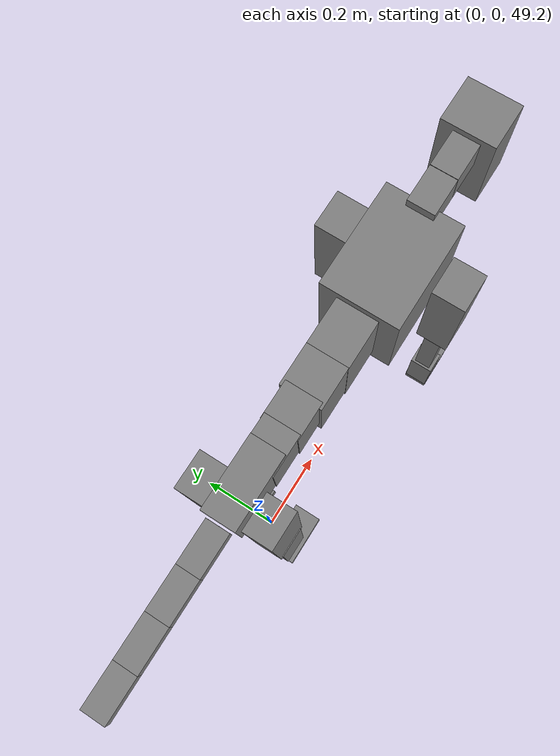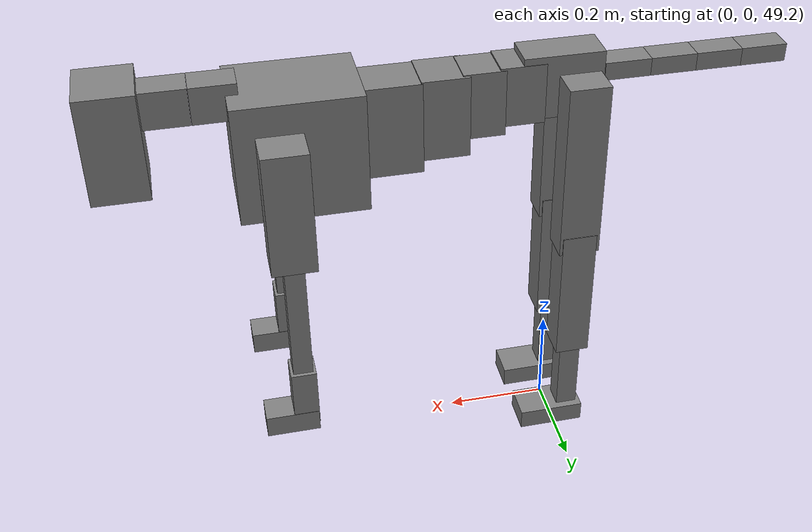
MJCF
<mujoco model="dog">

    <default>
        <joint armature="0.02" stiffness="1" damping="0.2" limited="true"/>
        <geom condim="3" friction="1 0.05 0.05" margin="0.01"/>
        <motor ctrllimited="true" ctrlrange="-1.0 1.0" forcelimited="true" gear="50"/>
    </default>

    <compiler inertiafromgeom="true" angle="radian"/>

    <option timestep="0.016" iterations="50" tolerance="1e-10" solver="Newton" jacobian="dense" cone="pyramidal"/>

    <size nconmax="20000" njmax="60000" nstack="5000000"/>
    <visual>
        <map force="0.1" zfar="30"/>
        <rgba haze="0.15 0.25 0.35 1"/>
        <quality shadowsize="2048"/>
        <global offwidth="800" offheight="800"/>
    </visual>

    <asset>
        <texture type="skybox" builtin="gradient" rgb1="0.3 0.5 0.7" rgb2="0 0 0" width="512" height="512"/>
        <texture name="texplane" type="2d" builtin="checker" rgb1=".2 .3 .4" rgb2=".1 0.15 0.2" width="512" height="512"
                 mark="cross" markrgb=".8 .8 .8"/>
        <texture name="texgeom" type="cube" builtin="flat" mark="cross" width="127" height="1278" rgb1="0.8 0.6 0.4"
                 rgb2="0.8 0.6 0.4" markrgb="1 1 1" random="0.01"/>

        <material name="matplane" reflectance="0.3" texture="texplane" texrepeat="1 1" texuniform="true"/>
        <material name="matgeom" texture="texgeom" texuniform="true" rgba="0.8 0.6 .4 1"/>
    </asset>

    <worldbody>
        <geom name="floor" pos="0 0 0" size="0 0 .25" type="plane" material="matplane" condim="3"/>

        <light directional="false" diffuse=".2 .2 .2" specular="0 0 0" pos="0 0 5" dir="0 0 -1" castshadow="false"/>
        <light mode="targetbodycom" target="torso" directional="false" diffuse=".8 .8 .8" specular="0.3 0.3 0.3"
               pos="0 0 4.0" dir="0 0 -1"/>

        <body name="root" pos="0 0 50">
            <freejoint name="root_1"/>
            <geom type="box" pos="0 0 -0.02" size="0.0774  0.0358  0.063" density="2030"/>

            <body name="spine1" pos="0.054 0 0">
                <joint name="spine1_y" axis="0 1 0" range="0 0.7" limited="true"/>
                <geom type="box" pos="0.02375 0 -0.03" size="0.04375  0.0375  0.05985" density="2030"/>

                <body name="spine2" pos="0.0612 0 0">
                    <joint name="spine2_y" axis="0 1 0" range="-0.15 0.15" limited="true"/>
                    <geom type="box" pos="0.03555  0  -0.04" size="0.04055  0.039  0.06615" density="2030"/>

                    <body name="spine3" pos="0.0730 0 0">
                        <joint name="spine3_y" axis="0 1 0" range="-0.15 0.15" limited="true"/>
                        <geom type="box" pos="0.03555  0  -0.057" size="0.04555  0.0445  0.081" density="2030"/>

                        <body name="spine4" pos="0.0780 0 0">
                            <joint name="spine4_y" axis="0 1 0" range="-0.15 0.15" limited="true"/>
                            <geom type="box" pos="0.05265  0  -0.07" size="0.05265  0.045  0.09135" density="2030"/>

                            <body name="torso" pos="0.1082 0 0">
                                <joint name="torso_y" axis="0 1 0" range="-0.15 0.15" limited="true"/>
                                <geom type="box" pos="0.11925  0  -0.085" size="0.11925  0.085  0.11745"
                                      density="2030"/>

                                <body name="neck1" pos="0.2160  0   0.0180">
                                    <joint name="neck1_y" axis="0 1 0" range="-1.2  -1" limited="true"/>
                                    <geom type="box" pos="0.0423  0  0" size="0.0423  0.03  0.036" density="2325"/>

                                    <body name="neck2" pos="0.0853  0  0">
                                        <joint name="neck2_y" axis="0 1 0" range="0.1  0" limited="true"/>
                                        <geom type="box" pos="0.0423  0  0" size="0.0423  0.03  0.036" density="2325"/>

                                        <body name="head" pos="0.0853  0  0">
                                            <joint name="head_y" axis="0 1 0" range="-0.3  -0.2" limited="true"/>
                                            <geom type="box" pos="0.0531  0  -0.055" size="0.0531  0.06  0.1044"
                                                  density="4030"/>

                                        </body>
                                    </body>
                                </body>

                                <body name="front_shoulder" pos="0.156  0   -0.0480">
                                    <joint name="front_shoulder_y" axis="0 1 0" range="-1 1.5" limited="true"/>
                                    <geom type="box" pos="0 0.13 -0.0964" size="0.0426  0.0364  0.1231" density="1158"/>
                                    <geom type="box" pos="0 -0.13 -0.0964" size="0.0426  0.0364  0.1231"
                                          density="1158"/>

                                    <body name="front_elbow" pos="0  0  -0.1929">
                                        <joint name="front_elbow_y" axis="0 1 0" range="-2 0" limited="true"/>
                                        <geom type="box" pos="0 0.13 -0.1446" size="0.0192  0.0196  0.1446"
                                              density="1081"/>
                                        <geom type="box" pos="0 -0.13 -0.1446" size="0.0192  0.0196  0.1446"
                                              density="1081"/>

                                        <body name="front_wrist" pos="0  0  -0.2891">
                                            <joint name="front_wrist_y" axis="0 1 0" range="-0.2 0" limited="true"/>
                                            <geom type="box" pos="0 0.13 -0.0494" size="0.0246  0.0273  0.0625"
                                                  density="1664"/>
                                            <geom type="box" pos="0 -0.13 -0.0494" size="0.0246  0.0273  0.0625"
                                                  density="1664"/>

                                            <body name="front_finger_end" pos="0  0  -0.0987">
                                                <joint name="front_finger_y" axis="0 1 0" range="-0.4 1"
                                                       limited="true"/>
                                                <geom type="box" pos="0.0283  0.13  -0.0076"
                                                      size="0.0519  0.0283  0.0226" density="1515"/>
                                                <geom type="box" pos="0.0283  -0.13  -0.0076"
                                                      size="0.0519  0.0283  0.0226" density="1515"/>

                                            </body>

                                        </body>
                                    </body>
                                </body>

                            </body>
                        </body>
                    </body>
                </body>
            </body>

            <body name="back_hip" pos="-0.03 0 -0.018">
                <joint name="back_hip_y" axis="0 1 0" range="-1.5 0.3" limited="true"/>
                <geom type="box" pos="0 0.07 -0.1584" size="0.0400  0.0314  0.1812" density="1154"/>
                <geom type="box" pos="0 -0.07 -0.1584" size="0.0400  0.0314  0.1812" density="1154"/>

                <body name="back_knee" pos="0  0  -0.3168">
                    <joint name="back_knee_y" axis="0 1 0" range="0 2.8" limited="true"/>
                    <geom type="box" pos="0 0.07 -0.1275" size="0.0340  0.0335  0.1430" density="1227"/>
                    <geom type="box" pos="0 -0.07 -0.1275" size="0.0340  0.0335  0.1430" density="1227"/>

                    <body name="back_ankle" pos="0  0  -0.2550">
                        <joint name="back_ankle_y" axis="0 1 0" range="-2.2 0" limited="true"/>
                        <geom type="box" pos="0 0.07 -0.0924" size="0.0213  0.0213  0.1037" density="1284"/>
                        <geom type="box" pos="0 -0.07 -0.0924" size="0.0213  0.0213  0.1037" density="1284"/>

                        <body name="back_toe_end" pos="0  0  -0.1848">
                            <joint name="back_toe_y" axis="0 1 0" range="-0.4 1" limited="true"/>
                            <geom type="box" pos="0.0362  0.07  -0.0053" size="0.0663  0.0362  0.0203" density="1515"/>
                            <geom type="box" pos="0.0362  -0.07  -0.0053" size="0.0663  0.0362  0.0203" density="1515"/>

                        </body>
                    </body>
                </body>
            </body>

            <body name="tail1" pos="-0.074 0 -0.006">
                <joint name="tail1_y" axis="0 1 0" range="-0.2 0.2" limited="true"/>
                <geom type="box" pos="-0.0536  0  0" size="0.045  0.025  0.0175" density="1587"/>

                <body name="tail2" pos="-0.09 0 0">
                    <joint name="tail2_y" axis="0 1 0" range="-0.2 0.2" limited="true"/>
                    <geom type="box" pos="-0.0536  0  0" size="0.045  0.025  0.0175" density="1587"/>

                    <body name="tail3" pos="-0.09 0 0">
                        <joint name="tail3_y" axis="0 1 0" range="-0.2 0.2" limited="true"/>
                        <geom type="box" pos="-0.0536  0  0" size="0.045  0.025  0.0175" density="1587"/>

                        <body name="tail4" pos="-0.09 0 0">
                            <joint name="tail4_y" axis="0 1 0" range="-0.2 0.2" limited="true"/>
                            <geom type="box" pos="-0.0536  0  0" size="0.045  0.025  0.0175" density="1587"/>

                        </body>
                    </body>
                </body>
            </body>
        </body>
    </worldbody>

    <actuator>
        <motor joint="spine1_y" forcerange="-150 150     "/>
        <motor joint="spine2_y" forcerange="-150 150     "/>
        <motor joint="spine3_y" forcerange="-150 150     "/>
        <motor joint="spine4_y" forcerange="-150 150     "/>
        <motor joint="torso_y" forcerange="-150 150     "/>
        <motor joint="neck1_y" forcerange="-100 100       "/>
        <motor joint="neck2_y" forcerange="-100 100       "/>
        <motor joint="head_y" forcerange="-150 150       "/>
        <motor joint="front_shoulder_y" forcerange="-199.08 143.62"/>
        <motor joint="front_elbow_y" forcerange="-100.52 142.09"/>
        <motor joint="front_wrist_y" forcerange="-89.76 128.57"/>
        <motor joint="front_finger_y" forcerange="-65.67 45.43"/>
        <motor joint="back_hip_y" forcerange="-253.78 364.90"/>
        <motor joint="back_knee_y" forcerange="-303.10 384.42"/>
        <motor joint="back_angle_y" forcerange="-149.37 91.27"/>
        <motor joint="back_toe_y" forcerange="-121.95 87.42"/>
        <motor joint="tail1_y" forcerange="-50 50     "/>
        <motor joint="tail2_y" forcerange="-50 50     "/>
        <motor joint="tail3_y" forcerange="-50 50     "/>
        <motor joint="tail4_y" forcerange="-50 50     "/>
    </actuator>
</mujoco>
